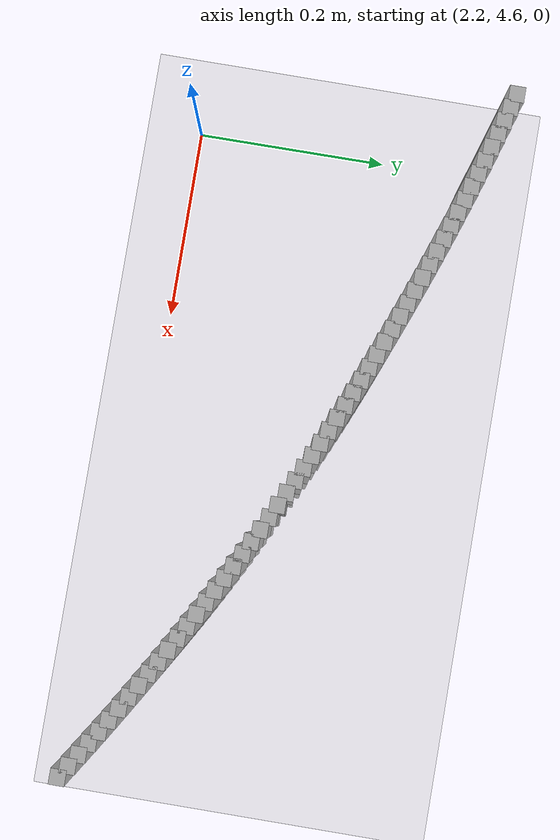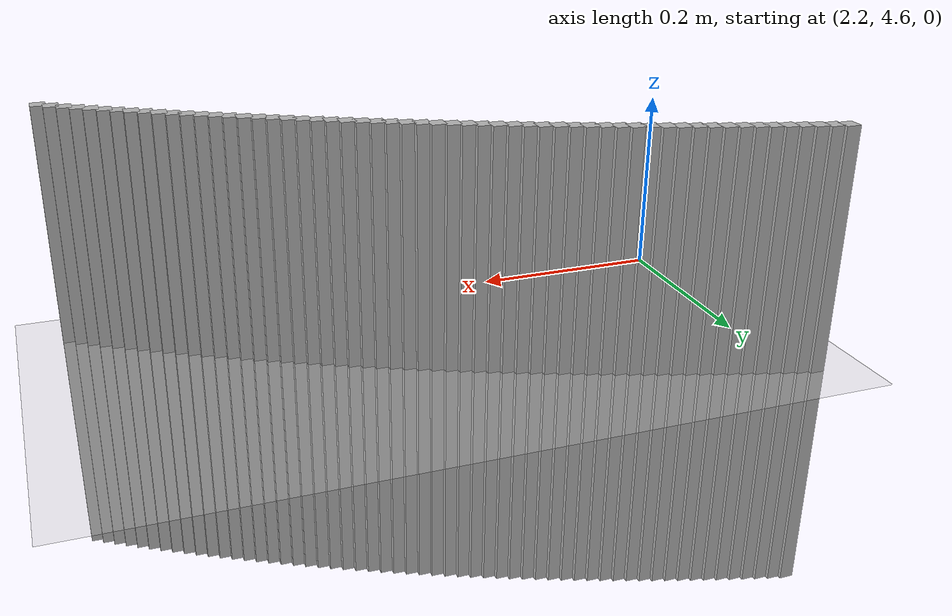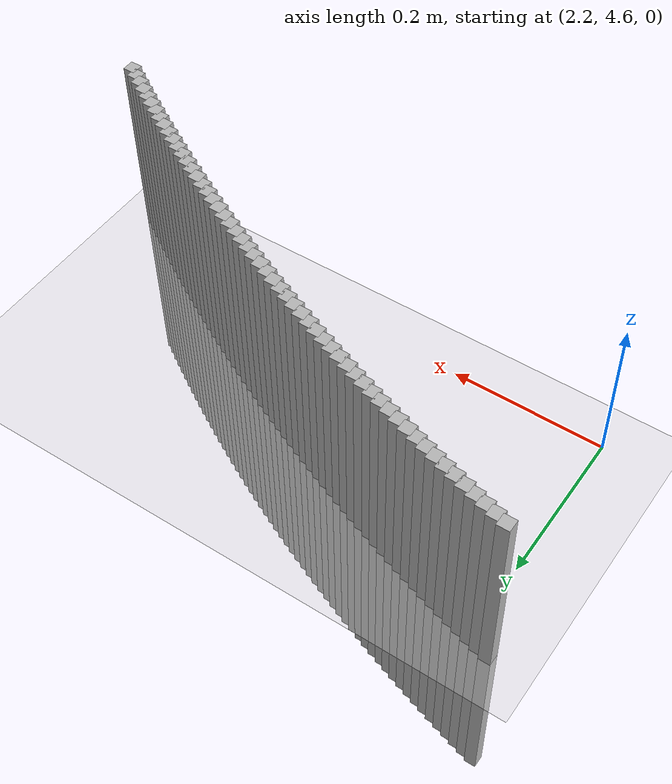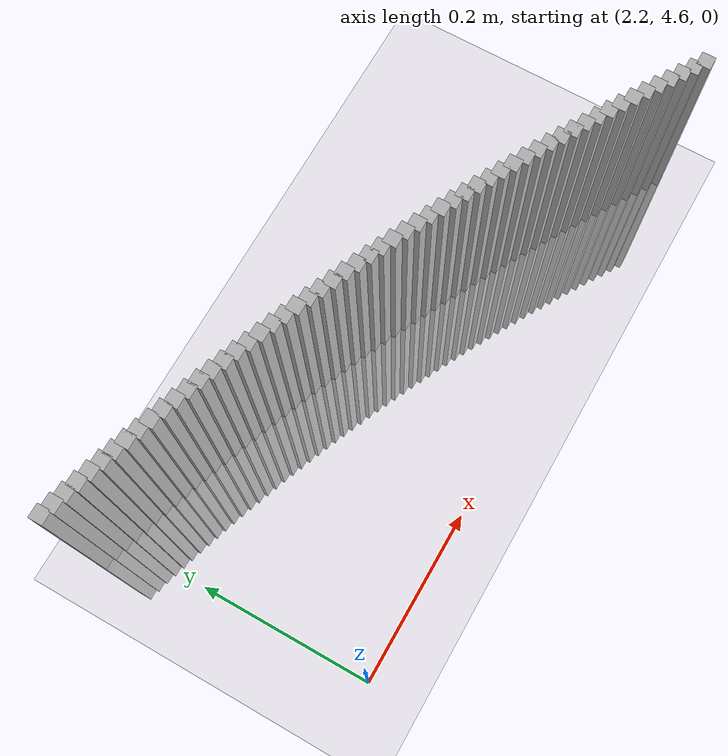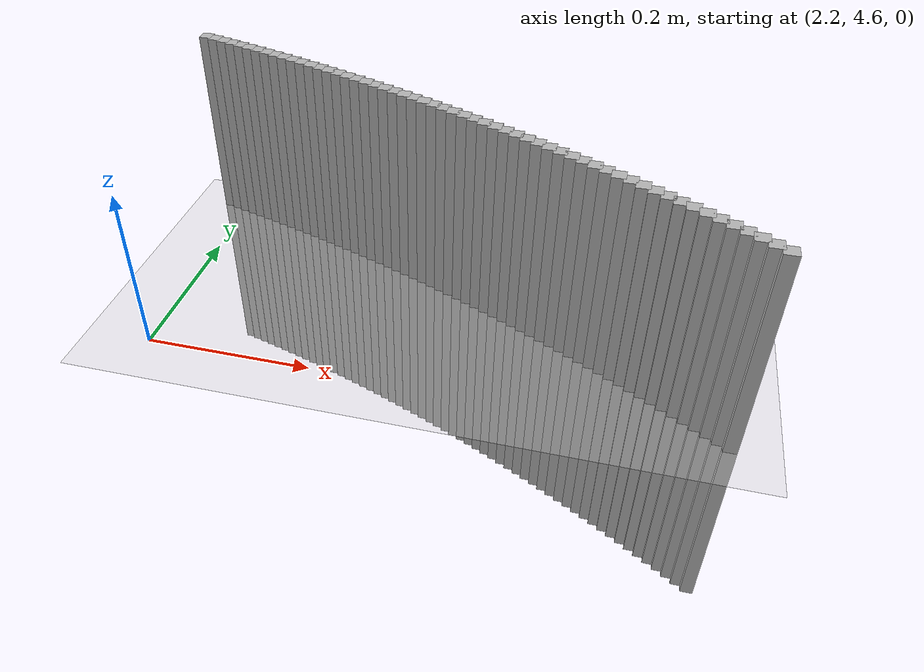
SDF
<sdf version="1.6">
 <world name="base">
  <model name="ground_plane">
   <static>1</static>
   <link name="link">
    <collision name="collision">
     <geometry><plane><normal>0 0 1</normal><size>100 100</size></plane></geometry>
     <surface>
      <contact><collide_bitmask>65535</collide_bitmask></contact>
      <friction><ode><mu>100</mu><mu2>50</mu2></ode></friction>
     </surface>
    </collision>
    <visual name="visual">
     <cast_shadows>0</cast_shadows>
     <geometry><plane><normal>0 0 1</normal><size>100 100</size></plane></geometry>
     <material>
      <script><uri>file://media/materials/scripts/gazebo.material</uri><name>Gazebo/Grey</name></script>
     </material>
    </visual>
   </link>
  </model>
  <model name="k404">
   <link name="57_link">
    <collision name="collision_57">
     <pose>2.17218 4.90794 0 0 -0 0</pose>
     <geometry><box><size>0.015 0.015 0.5</size></box></geometry>
    </collision>
    <visual name="visual_57">
     <pose>2.17218 4.90794 0 0 -0 0</pose>
     <geometry><box><size>0.015 0.015 0.5</size></box></geometry>
    </visual>
   </link>
   <link name="58_link">
    <collision name="collision_58">
     <pose>2.18555 4.90417 0 0 -0 0</pose>
     <geometry><box><size>0.015 0.015 0.5</size></box></geometry>
    </collision>
    <visual name="visual_58">
     <pose>2.18555 4.90417 0 0 -0 0</pose>
     <geometry><box><size>0.015 0.015 0.5</size></box></geometry>
    </visual>
   </link>
   <link name="59_link">
    <collision name="collision_59">
     <pose>2.19889 4.90032 0 0 -0 0</pose>
     <geometry><box><size>0.015 0.015 0.5</size></box></geometry>
    </collision>
    <visual name="visual_59">
     <pose>2.19889 4.90032 0 0 -0 0</pose>
     <geometry><box><size>0.015 0.015 0.5</size></box></geometry>
    </visual>
   </link>
   <link name="60_link">
    <collision name="collision_60">
     <pose>2.21222 4.8964 0 0 -0 0</pose>
     <geometry><box><size>0.015 0.015 0.5</size></box></geometry>
    </collision>
    <visual name="visual_60">
     <pose>2.21222 4.8964 0 0 -0 0</pose>
     <geometry><box><size>0.015 0.015 0.5</size></box></geometry>
    </visual>
   </link>
   <link name="61_link">
    <collision name="collision_61">
     <pose>2.22552 4.89241 0 0 -0 0</pose>
     <geometry><box><size>0.015 0.015 0.5</size></box></geometry>
    </collision>
    <visual name="visual_61">
     <pose>2.22552 4.89241 0 0 -0 0</pose>
     <geometry><box><size>0.015 0.015 0.5</size></box></geometry>
    </visual>
   </link>
   <link name="62_link">
    <collision name="collision_62">
     <pose>2.2388 4.88834 0 0 -0 0</pose>
     <geometry><box><size>0.015 0.015 0.5</size></box></geometry>
    </collision>
    <visual name="visual_62">
     <pose>2.2388 4.88834 0 0 -0 0</pose>
     <geometry><box><size>0.015 0.015 0.5</size></box></geometry>
    </visual>
   </link>
   <link name="63_link">
    <collision name="collision_63">
     <pose>2.25206 4.8842 0 0 -0 0</pose>
     <geometry><box><size>0.015 0.015 0.5</size></box></geometry>
    </collision>
    <visual name="visual_63">
     <pose>2.25206 4.8842 0 0 -0 0</pose>
     <geometry><box><size>0.015 0.015 0.5</size></box></geometry>
    </visual>
   </link>
   <link name="64_link">
    <collision name="collision_64">
     <pose>2.26529 4.87998 0 0 -0 0</pose>
     <geometry><box><size>0.015 0.015 0.5</size></box></geometry>
    </collision>
    <visual name="visual_64">
     <pose>2.26529 4.87998 0 0 -0 0</pose>
     <geometry><box><size>0.015 0.015 0.5</size></box></geometry>
    </visual>
   </link>
   <link name="65_link">
    <collision name="collision_65">
     <pose>2.2785 4.8757 0 0 -0 0</pose>
     <geometry><box><size>0.015 0.015 0.5</size></box></geometry>
    </collision>
    <visual name="visual_65">
     <pose>2.2785 4.8757 0 0 -0 0</pose>
     <geometry><box><size>0.015 0.015 0.5</size></box></geometry>
    </visual>
   </link>
   <link name="66_link">
    <collision name="collision_66">
     <pose>2.29169 4.87134 0 0 -0 0</pose>
     <geometry><box><size>0.015 0.015 0.5</size></box></geometry>
    </collision>
    <visual name="visual_66">
     <pose>2.29169 4.87134 0 0 -0 0</pose>
     <geometry><box><size>0.015 0.015 0.5</size></box></geometry>
    </visual>
   </link>
   <link name="67_link">
    <collision name="collision_67">
     <pose>2.30485 4.8669 0 0 -0 0</pose>
     <geometry><box><size>0.015 0.015 0.5</size></box></geometry>
    </collision>
    <visual name="visual_67">
     <pose>2.30485 4.8669 0 0 -0 0</pose>
     <geometry><box><size>0.015 0.015 0.5</size></box></geometry>
    </visual>
   </link>
   <link name="68_link">
    <collision name="collision_68">
     <pose>2.31799 4.86239 0 0 -0 0</pose>
     <geometry><box><size>0.015 0.015 0.5</size></box></geometry>
    </collision>
    <visual name="visual_68">
     <pose>2.31799 4.86239 0 0 -0 0</pose>
     <geometry><box><size>0.015 0.015 0.5</size></box></geometry>
    </visual>
   </link>
   <link name="69_link">
    <collision name="collision_69">
     <pose>2.3311 4.85781 0 0 -0 0</pose>
     <geometry><box><size>0.015 0.015 0.5</size></box></geometry>
    </collision>
    <visual name="visual_69">
     <pose>2.3311 4.85781 0 0 -0 0</pose>
     <geometry><box><size>0.015 0.015 0.5</size></box></geometry>
    </visual>
   </link>
   <link name="70_link">
    <collision name="collision_70">
     <pose>2.34418 4.85316 0 0 -0 0</pose>
     <geometry><box><size>0.015 0.015 0.5</size></box></geometry>
    </collision>
    <visual name="visual_70">
     <pose>2.34418 4.85316 0 0 -0 0</pose>
     <geometry><box><size>0.015 0.015 0.5</size></box></geometry>
    </visual>
   </link>
   <link name="71_link">
    <collision name="collision_71">
     <pose>2.35724 4.84843 0 0 -0 0</pose>
     <geometry><box><size>0.015 0.015 0.5</size></box></geometry>
    </collision>
    <visual name="visual_71">
     <pose>2.35724 4.84843 0 0 -0 0</pose>
     <geometry><box><size>0.015 0.015 0.5</size></box></geometry>
    </visual>
   </link>
   <link name="72_link">
    <collision name="collision_72">
     <pose>2.37028 4.84363 0 0 -0 0</pose>
     <geometry><box><size>0.015 0.015 0.5</size></box></geometry>
    </collision>
    <visual name="visual_72">
     <pose>2.37028 4.84363 0 0 -0 0</pose>
     <geometry><box><size>0.015 0.015 0.5</size></box></geometry>
    </visual>
   </link>
   <link name="73_link">
    <collision name="collision_73">
     <pose>2.38328 4.83876 0 0 -0 0</pose>
     <geometry><box><size>0.015 0.015 0.5</size></box></geometry>
    </collision>
    <visual name="visual_73">
     <pose>2.38328 4.83876 0 0 -0 0</pose>
     <geometry><box><size>0.015 0.015 0.5</size></box></geometry>
    </visual>
   </link>
   <link name="74_link">
    <collision name="collision_74">
     <pose>2.39626 4.83382 0 0 -0 0</pose>
     <geometry><box><size>0.015 0.015 0.5</size></box></geometry>
    </collision>
    <visual name="visual_74">
     <pose>2.39626 4.83382 0 0 -0 0</pose>
     <geometry><box><size>0.015 0.015 0.5</size></box></geometry>
    </visual>
   </link>
   <link name="75_link">
    <collision name="collision_75">
     <pose>2.40922 4.8288 0 0 -0 0</pose>
     <geometry><box><size>0.015 0.015 0.5</size></box></geometry>
    </collision>
    <visual name="visual_75">
     <pose>2.40922 4.8288 0 0 -0 0</pose>
     <geometry><box><size>0.015 0.015 0.5</size></box></geometry>
    </visual>
   </link>
   <link name="76_link">
    <collision name="collision_76">
     <pose>2.42214 4.82372 0 0 -0 0</pose>
     <geometry><box><size>0.015 0.015 0.5</size></box></geometry>
    </collision>
    <visual name="visual_76">
     <pose>2.42214 4.82372 0 0 -0 0</pose>
     <geometry><box><size>0.015 0.015 0.5</size></box></geometry>
    </visual>
   </link>
   <link name="77_link">
    <collision name="collision_77">
     <pose>2.43504 4.81856 0 0 -0 0</pose>
     <geometry><box><size>0.015 0.015 0.5</size></box></geometry>
    </collision>
    <visual name="visual_77">
     <pose>2.43504 4.81856 0 0 -0 0</pose>
     <geometry><box><size>0.015 0.015 0.5</size></box></geometry>
    </visual>
   </link>
   <link name="78_link">
    <collision name="collision_78">
     <pose>2.4479 4.81333 0 0 -0 0</pose>
     <geometry><box><size>0.015 0.015 0.5</size></box></geometry>
    </collision>
    <visual name="visual_78">
     <pose>2.4479 4.81333 0 0 -0 0</pose>
     <geometry><box><size>0.015 0.015 0.5</size></box></geometry>
    </visual>
   </link>
   <link name="79_link">
    <collision name="collision_79">
     <pose>2.46074 4.80803 0 0 -0 0</pose>
     <geometry><box><size>0.015 0.015 0.5</size></box></geometry>
    </collision>
    <visual name="visual_79">
     <pose>2.46074 4.80803 0 0 -0 0</pose>
     <geometry><box><size>0.015 0.015 0.5</size></box></geometry>
    </visual>
   </link>
   <link name="80_link">
    <collision name="collision_80">
     <pose>2.47355 4.80265 0 0 -0 0</pose>
     <geometry><box><size>0.015 0.015 0.5</size></box></geometry>
    </collision>
    <visual name="visual_80">
     <pose>2.47355 4.80265 0 0 -0 0</pose>
     <geometry><box><size>0.015 0.015 0.5</size></box></geometry>
    </visual>
   </link>
   <link name="81_link">
    <collision name="collision_81">
     <pose>2.48632 4.79721 0 0 -0 0</pose>
     <geometry><box><size>0.015 0.015 0.5</size></box></geometry>
    </collision>
    <visual name="visual_81">
     <pose>2.48632 4.79721 0 0 -0 0</pose>
     <geometry><box><size>0.015 0.015 0.5</size></box></geometry>
    </visual>
   </link>
   <link name="82_link">
    <collision name="collision_82">
     <pose>2.49907 4.79169 0 0 -0 0</pose>
     <geometry><box><size>0.015 0.015 0.5</size></box></geometry>
    </collision>
    <visual name="visual_82">
     <pose>2.49907 4.79169 0 0 -0 0</pose>
     <geometry><box><size>0.015 0.015 0.5</size></box></geometry>
    </visual>
   </link>
   <link name="83_link">
    <collision name="collision_83">
     <pose>2.51179 4.78611 0 0 -0 0</pose>
     <geometry><box><size>0.015 0.015 0.5</size></box></geometry>
    </collision>
    <visual name="visual_83">
     <pose>2.51179 4.78611 0 0 -0 0</pose>
     <geometry><box><size>0.015 0.015 0.5</size></box></geometry>
    </visual>
   </link>
   <link name="84_link">
    <collision name="collision_84">
     <pose>2.52447 4.78045 0 0 -0 0</pose>
     <geometry><box><size>0.015 0.015 0.5</size></box></geometry>
    </collision>
    <visual name="visual_84">
     <pose>2.52447 4.78045 0 0 -0 0</pose>
     <geometry><box><size>0.015 0.015 0.5</size></box></geometry>
    </visual>
   </link>
   <link name="85_link">
    <collision name="collision_85">
     <pose>2.53713 4.77473 0 0 -0 0</pose>
     <geometry><box><size>0.015 0.015 0.5</size></box></geometry>
    </collision>
    <visual name="visual_85">
     <pose>2.53713 4.77473 0 0 -0 0</pose>
     <geometry><box><size>0.015 0.015 0.5</size></box></geometry>
    </visual>
   </link>
   <link name="86_link">
    <collision name="collision_86">
     <pose>2.54975 4.76893 0 0 -0 0</pose>
     <geometry><box><size>0.015 0.015 0.5</size></box></geometry>
    </collision>
    <visual name="visual_86">
     <pose>2.54975 4.76893 0 0 -0 0</pose>
     <geometry><box><size>0.015 0.015 0.5</size></box></geometry>
    </visual>
   </link>
   <link name="87_link">
    <collision name="collision_87">
     <pose>2.56234 4.76306 0 0 -0 0</pose>
     <geometry><box><size>0.015 0.015 0.5</size></box></geometry>
    </collision>
    <visual name="visual_87">
     <pose>2.56234 4.76306 0 0 -0 0</pose>
     <geometry><box><size>0.015 0.015 0.5</size></box></geometry>
    </visual>
   </link>
   <link name="88_link">
    <collision name="collision_88">
     <pose>2.57489 4.75712 0 0 -0 0</pose>
     <geometry><box><size>0.015 0.015 0.5</size></box></geometry>
    </collision>
    <visual name="visual_88">
     <pose>2.57489 4.75712 0 0 -0 0</pose>
     <geometry><box><size>0.015 0.015 0.5</size></box></geometry>
    </visual>
   </link>
   <link name="89_link">
    <collision name="collision_89">
     <pose>2.58741 4.75112 0 0 -0 0</pose>
     <geometry><box><size>0.015 0.015 0.5</size></box></geometry>
    </collision>
    <visual name="visual_89">
     <pose>2.58741 4.75112 0 0 -0 0</pose>
     <geometry><box><size>0.015 0.015 0.5</size></box></geometry>
    </visual>
   </link>
   <link name="90_link">
    <collision name="collision_90">
     <pose>2.5999 4.74504 0 0 -0 0</pose>
     <geometry><box><size>0.015 0.015 0.5</size></box></geometry>
    </collision>
    <visual name="visual_90">
     <pose>2.5999 4.74504 0 0 -0 0</pose>
     <geometry><box><size>0.015 0.015 0.5</size></box></geometry>
    </visual>
   </link>
   <link name="91_link">
    <collision name="collision_91">
     <pose>2.61236 4.7389 0 0 -0 0</pose>
     <geometry><box><size>0.015 0.015 0.5</size></box></geometry>
    </collision>
    <visual name="visual_91">
     <pose>2.61236 4.7389 0 0 -0 0</pose>
     <geometry><box><size>0.015 0.015 0.5</size></box></geometry>
    </visual>
   </link>
   <link name="92_link">
    <collision name="collision_92">
     <pose>2.62478 4.73268 0 0 -0 0</pose>
     <geometry><box><size>0.015 0.015 0.5</size></box></geometry>
    </collision>
    <visual name="visual_92">
     <pose>2.62478 4.73268 0 0 -0 0</pose>
     <geometry><box><size>0.015 0.015 0.5</size></box></geometry>
    </visual>
   </link>
   <link name="93_link">
    <collision name="collision_93">
     <pose>2.63717 4.7264 0 0 -0 0</pose>
     <geometry><box><size>0.015 0.015 0.5</size></box></geometry>
    </collision>
    <visual name="visual_93">
     <pose>2.63717 4.7264 0 0 -0 0</pose>
     <geometry><box><size>0.015 0.015 0.5</size></box></geometry>
    </visual>
   </link>
   <link name="94_link">
    <collision name="collision_94">
     <pose>2.64952 4.72005 0 0 -0 0</pose>
     <geometry><box><size>0.015 0.015 0.5</size></box></geometry>
    </collision>
    <visual name="visual_94">
     <pose>2.64952 4.72005 0 0 -0 0</pose>
     <geometry><box><size>0.015 0.015 0.5</size></box></geometry>
    </visual>
   </link>
   <link name="95_link">
    <collision name="collision_95">
     <pose>2.66183 4.71363 0 0 -0 0</pose>
     <geometry><box><size>0.015 0.015 0.5</size></box></geometry>
    </collision>
    <visual name="visual_95">
     <pose>2.66183 4.71363 0 0 -0 0</pose>
     <geometry><box><size>0.015 0.015 0.5</size></box></geometry>
    </visual>
   </link>
   <link name="96_link">
    <collision name="collision_96">
     <pose>2.67411 4.70714 0 0 -0 0</pose>
     <geometry><box><size>0.015 0.015 0.5</size></box></geometry>
    </collision>
    <visual name="visual_96">
     <pose>2.67411 4.70714 0 0 -0 0</pose>
     <geometry><box><size>0.015 0.015 0.5</size></box></geometry>
    </visual>
   </link>
   <link name="97_link">
    <collision name="collision_97">
     <pose>2.68636 4.70058 0 0 -0 0</pose>
     <geometry><box><size>0.015 0.015 0.5</size></box></geometry>
    </collision>
    <visual name="visual_97">
     <pose>2.68636 4.70058 0 0 -0 0</pose>
     <geometry><box><size>0.015 0.015 0.5</size></box></geometry>
    </visual>
   </link>
   <link name="98_link">
    <collision name="collision_98">
     <pose>2.69856 4.69396 0 0 -0 0</pose>
     <geometry><box><size>0.015 0.015 0.5</size></box></geometry>
    </collision>
    <visual name="visual_98">
     <pose>2.69856 4.69396 0 0 -0 0</pose>
     <geometry><box><size>0.015 0.015 0.5</size></box></geometry>
    </visual>
   </link>
   <link name="99_link">
    <collision name="collision_99">
     <pose>2.71073 4.68726 0 0 -0 0</pose>
     <geometry><box><size>0.015 0.015 0.5</size></box></geometry>
    </collision>
    <visual name="visual_99">
     <pose>2.71073 4.68726 0 0 -0 0</pose>
     <geometry><box><size>0.015 0.015 0.5</size></box></geometry>
    </visual>
   </link>
   <link name="100_link">
    <collision name="collision_100">
     <pose>2.72287 4.6805 0 0 -0 0</pose>
     <geometry><box><size>0.015 0.015 0.5</size></box></geometry>
    </collision>
    <visual name="visual_100">
     <pose>2.72287 4.6805 0 0 -0 0</pose>
     <geometry><box><size>0.015 0.015 0.5</size></box></geometry>
    </visual>
   </link>
   <link name="101_link">
    <collision name="collision_101">
     <pose>2.73496 4.67368 0 0 -0 0</pose>
     <geometry><box><size>0.015 0.015 0.5</size></box></geometry>
    </collision>
    <visual name="visual_101">
     <pose>2.73496 4.67368 0 0 -0 0</pose>
     <geometry><box><size>0.015 0.015 0.5</size></box></geometry>
    </visual>
   </link>
   <link name="102_link">
    <collision name="collision_102">
     <pose>2.74702 4.66678 0 0 -0 0</pose>
     <geometry><box><size>0.015 0.015 0.5</size></box></geometry>
    </collision>
    <visual name="visual_102">
     <pose>2.74702 4.66678 0 0 -0 0</pose>
     <geometry><box><size>0.015 0.015 0.5</size></box></geometry>
    </visual>
   </link>
   <link name="103_link">
    <collision name="collision_103">
     <pose>2.75904 4.65982 0 0 -0 0</pose>
     <geometry><box><size>0.015 0.015 0.5</size></box></geometry>
    </collision>
    <visual name="visual_103">
     <pose>2.75904 4.65982 0 0 -0 0</pose>
     <geometry><box><size>0.015 0.015 0.5</size></box></geometry>
    </visual>
   </link>
   <link name="104_link">
    <collision name="collision_104">
     <pose>2.77102 4.65279 0 0 -0 0</pose>
     <geometry><box><size>0.015 0.015 0.5</size></box></geometry>
    </collision>
    <visual name="visual_104">
     <pose>2.77102 4.65279 0 0 -0 0</pose>
     <geometry><box><size>0.015 0.015 0.5</size></box></geometry>
    </visual>
   </link>
   <link name="105_link">
    <collision name="collision_105">
     <pose>2.78296 4.6457 0 0 -0 0</pose>
     <geometry><box><size>0.015 0.015 0.5</size></box></geometry>
    </collision>
    <visual name="visual_105">
     <pose>2.78296 4.6457 0 0 -0 0</pose>
     <geometry><box><size>0.015 0.015 0.5</size></box></geometry>
    </visual>
   </link>
   <link name="106_link">
    <collision name="collision_106">
     <pose>2.79486 4.63854 0 0 -0 0</pose>
     <geometry><box><size>0.015 0.015 0.5</size></box></geometry>
    </collision>
    <visual name="visual_106">
     <pose>2.79486 4.63854 0 0 -0 0</pose>
     <geometry><box><size>0.015 0.015 0.5</size></box></geometry>
    </visual>
   </link>
   <link name="107_link">
    <collision name="collision_107">
     <pose>2.80672 4.63131 0 0 -0 0</pose>
     <geometry><box><size>0.015 0.015 0.5</size></box></geometry>
    </collision>
    <visual name="visual_107">
     <pose>2.80672 4.63131 0 0 -0 0</pose>
     <geometry><box><size>0.015 0.015 0.5</size></box></geometry>
    </visual>
   </link>
   <link name="108_link">
    <collision name="collision_108">
     <pose>2.81854 4.62402 0 0 -0 0</pose>
     <geometry><box><size>0.015 0.015 0.5</size></box></geometry>
    </collision>
    <visual name="visual_108">
     <pose>2.81854 4.62402 0 0 -0 0</pose>
     <geometry><box><size>0.015 0.015 0.5</size></box></geometry>
    </visual>
   </link>
   <link name="109_link">
    <collision name="collision_109">
     <pose>2.83032 4.61666 0 0 -0 0</pose>
     <geometry><box><size>0.015 0.015 0.5</size></box></geometry>
    </collision>
    <visual name="visual_109">
     <pose>2.83032 4.61666 0 0 -0 0</pose>
     <geometry><box><size>0.015 0.015 0.5</size></box></geometry>
    </visual>
   </link>
   <link name="110_link">
    <collision name="collision_110">
     <pose>2.84206 4.60924 0 0 -0 0</pose>
     <geometry><box><size>0.015 0.015 0.5</size></box></geometry>
    </collision>
    <visual name="visual_110">
     <pose>2.84206 4.60924 0 0 -0 0</pose>
     <geometry><box><size>0.015 0.015 0.5</size></box></geometry>
    </visual>
   </link>
   <link name="111_link">
    <collision name="collision_111">
     <pose>2.85375 4.60175 0 0 -0 0</pose>
     <geometry><box><size>0.015 0.015 0.5</size></box></geometry>
    </collision>
    <visual name="visual_111">
     <pose>2.85375 4.60175 0 0 -0 0</pose>
     <geometry><box><size>0.015 0.015 0.5</size></box></geometry>
    </visual>
   </link>
   <link name="112_link">
    <collision name="collision_112">
     <pose>2.86541 4.5942 0 0 -0 0</pose>
     <geometry><box><size>0.015 0.015 0.5</size></box></geometry>
    </collision>
    <visual name="visual_112">
     <pose>2.86541 4.5942 0 0 -0 0</pose>
     <geometry><box><size>0.015 0.015 0.5</size></box></geometry>
    </visual>
   </link>
   <static>1</static>
  </model>
 </world>
</sdf>
